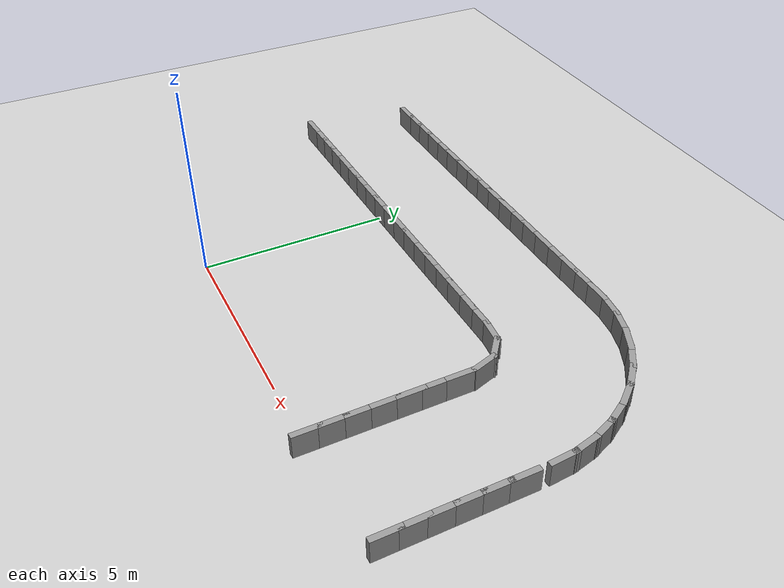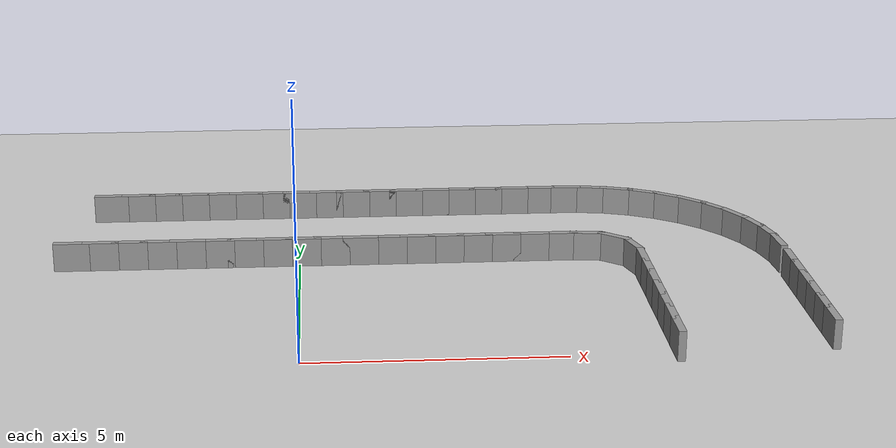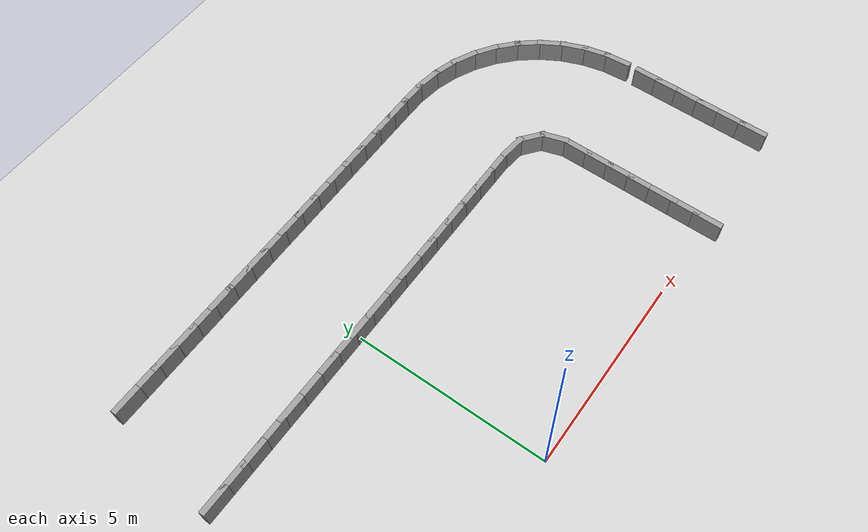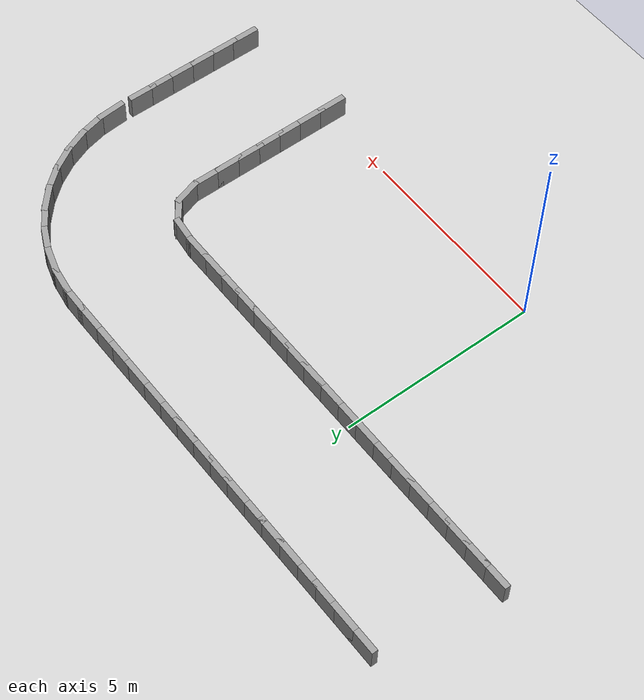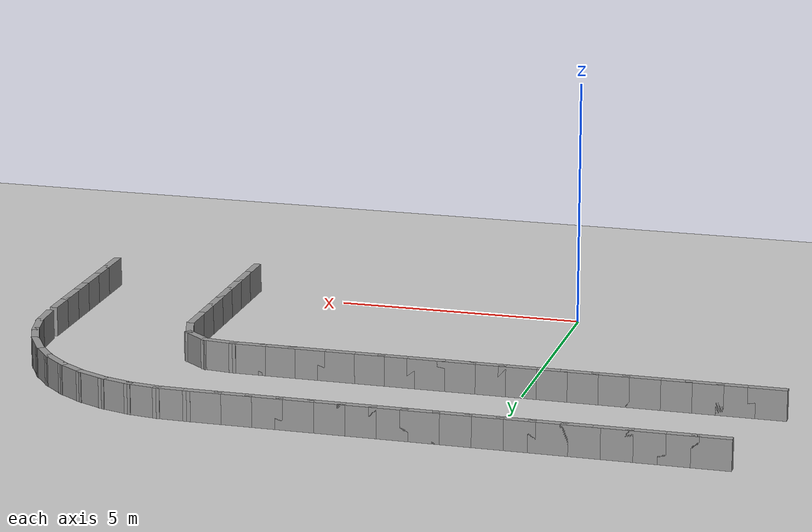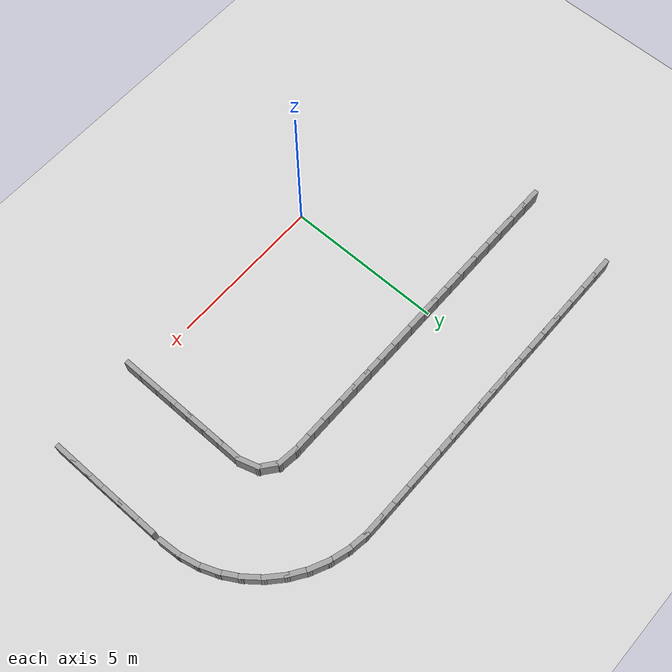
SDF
<sdf version="1.7">
 <world name="default">
  <model name="ground_plane">
   <static>1</static>
   <link name="link">
    <collision name="collision">
     <geometry><plane><normal>0 0 1</normal><size>100 100</size></plane></geometry>
     <surface><friction><ode><mu>100</mu><mu2>50</mu2></ode></friction></surface>
    </collision>
    <visual name="visual">
     <cast_shadows>0</cast_shadows>
     <geometry><plane><normal>0 0 1</normal><size>100 100</size></plane></geometry>
     <material>
      <script><uri>file://media/materials/scripts/gazebo.material</uri><name>Gazebo/Grey</name></script>
     </material>
    </visual>
   </link>
  </model>
  <model name="parking_lot_loop">
   <link name="Wall_0">
    <collision name="Wall_0_Collision">
     <geometry><box><size>0.7410 0.1500 0.6000</size></box></geometry>
     <pose>0 0 0.3000 0 -0 0</pose>
    </collision>
    <visual name="Wall_0_Visual">
     <pose>0 0 0.3000 0 -0 0</pose>
     <geometry><box><size>0.7410 0.1500 0.6000</size></box></geometry>
     <material>
      <script><uri>file://media/materials/scripts/gazebo.material</uri><name>Gazebo/Grey</name></script>
      <ambient>1 1 1 1</ambient>
     </material>
    </visual>
    <pose>6.9127 4.2823 0 0 -0 1.87080</pose>
   </link>
   <link name="Wall_1">
    <collision name="Wall_1_Collision">
     <geometry><box><size>0.7410 0.1500 0.6000</size></box></geometry>
     <pose>0 0 0.3000 0 -0 0</pose>
    </collision>
    <visual name="Wall_1_Visual">
     <pose>0 0 0.3000 0 -0 0</pose>
     <geometry><box><size>0.7410 0.1500 0.6000</size></box></geometry>
     <material>
      <script><uri>file://media/materials/scripts/gazebo.material</uri><name>Gazebo/Grey</name></script>
      <ambient>1 1 1 1</ambient>
     </material>
    </visual>
    <pose>6.5938 4.7483 0 0 -0 2.47079</pose>
   </link>
   <link name="Wall_2">
    <collision name="Wall_2_Collision">
     <geometry><box><size>0.7455 0.1500 0.6000</size></box></geometry>
     <pose>0 0 0.3000 0 -0 0</pose>
    </collision>
    <visual name="Wall_2_Visual">
     <pose>0 0 0.3000 0 -0 0</pose>
     <geometry><box><size>0.7455 0.1500 0.6000</size></box></geometry>
     <material>
      <script><uri>file://media/materials/scripts/gazebo.material</uri><name>Gazebo/Grey</name></script>
      <ambient>1 1 1 1</ambient>
     </material>
    </visual>
    <pose>6.0666 4.9660 0 0 -0 3.02720</pose>
   </link>
   <link name="Wall_3">
    <collision name="Wall_3_Collision">
     <geometry><box><size>0.7500 0.1500 0.6000</size></box></geometry>
     <pose>0 0 0.3000 0 -0 0</pose>
    </collision>
    <visual name="Wall_3_Visual">
     <pose>0 0 0.3000 0 -0 0</pose>
     <geometry><box><size>0.7500 0.1500 0.6000</size></box></geometry>
     <material>
      <script><uri>file://media/materials/scripts/gazebo.material</uri><name>Gazebo/Grey</name></script>
      <ambient>1 1 1 1</ambient>
     </material>
    </visual>
    <pose>5.4708 5.0000 0 0 -0 3.14159</pose>
   </link>
   <link name="Wall_4">
    <collision name="Wall_4_Collision">
     <geometry><box><size>0.7500 0.1500 0.6000</size></box></geometry>
     <pose>0 0 0.3000 0 -0 0</pose>
    </collision>
    <visual name="Wall_4_Visual">
     <pose>0 0 0.3000 0 -0 0</pose>
     <geometry><box><size>0.7500 0.1500 0.6000</size></box></geometry>
     <material>
      <script><uri>file://media/materials/scripts/gazebo.material</uri><name>Gazebo/Grey</name></script>
      <ambient>1 1 1 1</ambient>
     </material>
    </visual>
    <pose>4.8708 5.0000 0 0 -0 3.14159</pose>
   </link>
   <link name="Wall_5">
    <collision name="Wall_5_Collision">
     <geometry><box><size>0.7500 0.1500 0.6000</size></box></geometry>
     <pose>0 0 0.3000 0 -0 0</pose>
    </collision>
    <visual name="Wall_5_Visual">
     <pose>0 0 0.3000 0 -0 0</pose>
     <geometry><box><size>0.7500 0.1500 0.6000</size></box></geometry>
     <material>
      <script><uri>file://media/materials/scripts/gazebo.material</uri><name>Gazebo/Grey</name></script>
      <ambient>1 1 1 1</ambient>
     </material>
    </visual>
    <pose>4.2708 5.0000 0 0 -0 3.14159</pose>
   </link>
   <link name="Wall_6">
    <collision name="Wall_6_Collision">
     <geometry><box><size>0.7500 0.1500 0.6000</size></box></geometry>
     <pose>0 0 0.3000 0 -0 0</pose>
    </collision>
    <visual name="Wall_6_Visual">
     <pose>0 0 0.3000 0 -0 0</pose>
     <geometry><box><size>0.7500 0.1500 0.6000</size></box></geometry>
     <material>
      <script><uri>file://media/materials/scripts/gazebo.material</uri><name>Gazebo/Grey</name></script>
      <ambient>1 1 1 1</ambient>
     </material>
    </visual>
    <pose>3.6708 5.0000 0 0 -0 3.14159</pose>
   </link>
   <link name="Wall_7">
    <collision name="Wall_7_Collision">
     <geometry><box><size>0.7500 0.1500 0.6000</size></box></geometry>
     <pose>0 0 0.3000 0 -0 0</pose>
    </collision>
    <visual name="Wall_7_Visual">
     <pose>0 0 0.3000 0 -0 0</pose>
     <geometry><box><size>0.7500 0.1500 0.6000</size></box></geometry>
     <material>
      <script><uri>file://media/materials/scripts/gazebo.material</uri><name>Gazebo/Grey</name></script>
      <ambient>1 1 1 1</ambient>
     </material>
    </visual>
    <pose>3.0708 5.0000 0 0 -0 3.14159</pose>
   </link>
   <link name="Wall_8">
    <collision name="Wall_8_Collision">
     <geometry><box><size>0.7500 0.1500 0.6000</size></box></geometry>
     <pose>0 0 0.3000 0 -0 0</pose>
    </collision>
    <visual name="Wall_8_Visual">
     <pose>0 0 0.3000 0 -0 0</pose>
     <geometry><box><size>0.7500 0.1500 0.6000</size></box></geometry>
     <material>
      <script><uri>file://media/materials/scripts/gazebo.material</uri><name>Gazebo/Grey</name></script>
      <ambient>1 1 1 1</ambient>
     </material>
    </visual>
    <pose>2.4708 5.0000 0 0 -0 3.14159</pose>
   </link>
   <link name="Wall_9">
    <collision name="Wall_9_Collision">
     <geometry><box><size>0.7500 0.1500 0.6000</size></box></geometry>
     <pose>0 0 0.3000 0 -0 0</pose>
    </collision>
    <visual name="Wall_9_Visual">
     <pose>0 0 0.3000 0 -0 0</pose>
     <geometry><box><size>0.7500 0.1500 0.6000</size></box></geometry>
     <material>
      <script><uri>file://media/materials/scripts/gazebo.material</uri><name>Gazebo/Grey</name></script>
      <ambient>1 1 1 1</ambient>
     </material>
    </visual>
    <pose>1.8708 5.0000 0 0 -0 3.14159</pose>
   </link>
   <link name="Wall_10">
    <collision name="Wall_10_Collision">
     <geometry><box><size>0.7500 0.1500 0.6000</size></box></geometry>
     <pose>0 0 0.3000 0 -0 0</pose>
    </collision>
    <visual name="Wall_10_Visual">
     <pose>0 0 0.3000 0 -0 0</pose>
     <geometry><box><size>0.7500 0.1500 0.6000</size></box></geometry>
     <material>
      <script><uri>file://media/materials/scripts/gazebo.material</uri><name>Gazebo/Grey</name></script>
      <ambient>1 1 1 1</ambient>
     </material>
    </visual>
    <pose>1.2708 5.0000 0 0 -0 3.14159</pose>
   </link>
   <link name="Wall_11">
    <collision name="Wall_11_Collision">
     <geometry><box><size>0.7500 0.1500 0.6000</size></box></geometry>
     <pose>0 0 0.3000 0 -0 0</pose>
    </collision>
    <visual name="Wall_11_Visual">
     <pose>0 0 0.3000 0 -0 0</pose>
     <geometry><box><size>0.7500 0.1500 0.6000</size></box></geometry>
     <material>
      <script><uri>file://media/materials/scripts/gazebo.material</uri><name>Gazebo/Grey</name></script>
      <ambient>1 1 1 1</ambient>
     </material>
    </visual>
    <pose>0.6708 5.0000 0 0 -0 3.14159</pose>
   </link>
   <link name="Wall_12">
    <collision name="Wall_12_Collision">
     <geometry><box><size>0.7500 0.1500 0.6000</size></box></geometry>
     <pose>0 0 0.3000 0 -0 0</pose>
    </collision>
    <visual name="Wall_12_Visual">
     <pose>0 0 0.3000 0 -0 0</pose>
     <geometry><box><size>0.7500 0.1500 0.6000</size></box></geometry>
     <material>
      <script><uri>file://media/materials/scripts/gazebo.material</uri><name>Gazebo/Grey</name></script>
      <ambient>1 1 1 1</ambient>
     </material>
    </visual>
    <pose>0.0708 5.0000 0 0 -0 3.14159</pose>
   </link>
   <link name="Wall_13">
    <collision name="Wall_13_Collision">
     <geometry><box><size>0.7500 0.1500 0.6000</size></box></geometry>
     <pose>0 0 0.3000 0 -0 0</pose>
    </collision>
    <visual name="Wall_13_Visual">
     <pose>0 0 0.3000 0 -0 0</pose>
     <geometry><box><size>0.7500 0.1500 0.6000</size></box></geometry>
     <material>
      <script><uri>file://media/materials/scripts/gazebo.material</uri><name>Gazebo/Grey</name></script>
      <ambient>1 1 1 1</ambient>
     </material>
    </visual>
    <pose>-0.5292 5.0000 0 0 -0 3.14159</pose>
   </link>
   <link name="Wall_14">
    <collision name="Wall_14_Collision">
     <geometry><box><size>0.7500 0.1500 0.6000</size></box></geometry>
     <pose>0 0 0.3000 0 -0 0</pose>
    </collision>
    <visual name="Wall_14_Visual">
     <pose>0 0 0.3000 0 -0 0</pose>
     <geometry><box><size>0.7500 0.1500 0.6000</size></box></geometry>
     <material>
      <script><uri>file://media/materials/scripts/gazebo.material</uri><name>Gazebo/Grey</name></script>
      <ambient>1 1 1 1</ambient>
     </material>
    </visual>
    <pose>-1.1292 5.0000 0 0 -0 3.14159</pose>
   </link>
   <link name="Wall_15">
    <collision name="Wall_15_Collision">
     <geometry><box><size>0.7500 0.1500 0.6000</size></box></geometry>
     <pose>0 0 0.3000 0 -0 0</pose>
    </collision>
    <visual name="Wall_15_Visual">
     <pose>0 0 0.3000 0 -0 0</pose>
     <geometry><box><size>0.7500 0.1500 0.6000</size></box></geometry>
     <material>
      <script><uri>file://media/materials/scripts/gazebo.material</uri><name>Gazebo/Grey</name></script>
      <ambient>1 1 1 1</ambient>
     </material>
    </visual>
    <pose>-1.7292 5.0000 0 0 -0 3.14159</pose>
   </link>
   <link name="Wall_16">
    <collision name="Wall_16_Collision">
     <geometry><box><size>0.7500 0.1500 0.6000</size></box></geometry>
     <pose>0 0 0.3000 0 -0 0</pose>
    </collision>
    <visual name="Wall_16_Visual">
     <pose>0 0 0.3000 0 -0 0</pose>
     <geometry><box><size>0.7500 0.1500 0.6000</size></box></geometry>
     <material>
      <script><uri>file://media/materials/scripts/gazebo.material</uri><name>Gazebo/Grey</name></script>
      <ambient>1 1 1 1</ambient>
     </material>
    </visual>
    <pose>-2.3292 5.0000 0 0 -0 3.14159</pose>
   </link>
   <link name="Wall_17">
    <collision name="Wall_17_Collision">
     <geometry><box><size>0.7500 0.1500 0.6000</size></box></geometry>
     <pose>0 0 0.3000 0 -0 0</pose>
    </collision>
    <visual name="Wall_17_Visual">
     <pose>0 0 0.3000 0 -0 0</pose>
     <geometry><box><size>0.7500 0.1500 0.6000</size></box></geometry>
     <material>
      <script><uri>file://media/materials/scripts/gazebo.material</uri><name>Gazebo/Grey</name></script>
      <ambient>1 1 1 1</ambient>
     </material>
    </visual>
    <pose>-2.9292 5.0000 0 0 -0 3.14159</pose>
   </link>
   <link name="Wall_18">
    <collision name="Wall_18_Collision">
     <geometry><box><size>0.7500 0.1500 0.6000</size></box></geometry>
     <pose>0 0 0.3000 0 -0 0</pose>
    </collision>
    <visual name="Wall_18_Visual">
     <pose>0 0 0.3000 0 -0 0</pose>
     <geometry><box><size>0.7500 0.1500 0.6000</size></box></geometry>
     <material>
      <script><uri>file://media/materials/scripts/gazebo.material</uri><name>Gazebo/Grey</name></script>
      <ambient>1 1 1 1</ambient>
     </material>
    </visual>
    <pose>-3.5292 5.0000 0 0 -0 3.14159</pose>
   </link>
   <link name="Wall_19">
    <collision name="Wall_19_Collision">
     <geometry><box><size>0.7500 0.1500 0.6000</size></box></geometry>
     <pose>0 0 0.3000 0 -0 0</pose>
    </collision>
    <visual name="Wall_19_Visual">
     <pose>0 0 0.3000 0 -0 0</pose>
     <geometry><box><size>0.7500 0.1500 0.6000</size></box></geometry>
     <material>
      <script><uri>file://media/materials/scripts/gazebo.material</uri><name>Gazebo/Grey</name></script>
      <ambient>1 1 1 1</ambient>
     </material>
    </visual>
    <pose>-4.1292 5.0000 0 0 -0 3.14159</pose>
   </link>
   <link name="Wall_20">
    <collision name="Wall_20_Collision">
     <geometry><box><size>0.7500 0.1500 0.6000</size></box></geometry>
     <pose>0 0 0.3000 0 -0 0</pose>
    </collision>
    <visual name="Wall_20_Visual">
     <pose>0 0 0.3000 0 -0 0</pose>
     <geometry><box><size>0.7500 0.1500 0.6000</size></box></geometry>
     <material>
      <script><uri>file://media/materials/scripts/gazebo.material</uri><name>Gazebo/Grey</name></script>
      <ambient>1 1 1 1</ambient>
     </material>
    </visual>
    <pose>-4.7292 5.0000 0 0 -0 3.14159</pose>
   </link>
   <link name="Wall_70">
    <collision name="Wall_70_Collision">
     <geometry><box><size>0.7500 0.1500 0.6000</size></box></geometry>
     <pose>0 0 0.3000 0 -0 0</pose>
    </collision>
    <visual name="Wall_70_Visual">
     <pose>0 0 0.3000 0 -0 0</pose>
     <geometry><box><size>0.7500 0.1500 0.6000</size></box></geometry>
     <material>
      <script><uri>file://media/materials/scripts/gazebo.material</uri><name>Gazebo/Grey</name></script>
      <ambient>1 1 1 1</ambient>
     </material>
    </visual>
    <pose>7.0000 0.0168 0 0 -0 1.57080</pose>
   </link>
   <link name="Wall_71">
    <collision name="Wall_71_Collision">
     <geometry><box><size>0.7500 0.1500 0.6000</size></box></geometry>
     <pose>0 0 0.3000 0 -0 0</pose>
    </collision>
    <visual name="Wall_71_Visual">
     <pose>0 0 0.3000 0 -0 0</pose>
     <geometry><box><size>0.7500 0.1500 0.6000</size></box></geometry>
     <material>
      <script><uri>file://media/materials/scripts/gazebo.material</uri><name>Gazebo/Grey</name></script>
      <ambient>1 1 1 1</ambient>
     </material>
    </visual>
    <pose>7.0000 0.6168 0 0 -0 1.57080</pose>
   </link>
   <link name="Wall_72">
    <collision name="Wall_72_Collision">
     <geometry><box><size>0.7500 0.1500 0.6000</size></box></geometry>
     <pose>0 0 0.3000 0 -0 0</pose>
    </collision>
    <visual name="Wall_72_Visual">
     <pose>0 0 0.3000 0 -0 0</pose>
     <geometry><box><size>0.7500 0.1500 0.6000</size></box></geometry>
     <material>
      <script><uri>file://media/materials/scripts/gazebo.material</uri><name>Gazebo/Grey</name></script>
      <ambient>1 1 1 1</ambient>
     </material>
    </visual>
    <pose>7.0000 1.2168 0 0 -0 1.57080</pose>
   </link>
   <link name="Wall_73">
    <collision name="Wall_73_Collision">
     <geometry><box><size>0.7500 0.1500 0.6000</size></box></geometry>
     <pose>0 0 0.3000 0 -0 0</pose>
    </collision>
    <visual name="Wall_73_Visual">
     <pose>0 0 0.3000 0 -0 0</pose>
     <geometry><box><size>0.7500 0.1500 0.6000</size></box></geometry>
     <material>
      <script><uri>file://media/materials/scripts/gazebo.material</uri><name>Gazebo/Grey</name></script>
      <ambient>1 1 1 1</ambient>
     </material>
    </visual>
    <pose>7.0000 1.8168 0 0 -0 1.57080</pose>
   </link>
   <link name="Wall_74">
    <collision name="Wall_74_Collision">
     <geometry><box><size>0.7500 0.1500 0.6000</size></box></geometry>
     <pose>0 0 0.3000 0 -0 0</pose>
    </collision>
    <visual name="Wall_74_Visual">
     <pose>0 0 0.3000 0 -0 0</pose>
     <geometry><box><size>0.7500 0.1500 0.6000</size></box></geometry>
     <material>
      <script><uri>file://media/materials/scripts/gazebo.material</uri><name>Gazebo/Grey</name></script>
      <ambient>1 1 1 1</ambient>
     </material>
    </visual>
    <pose>7.0000 2.4168 0 0 -0 1.57080</pose>
   </link>
   <link name="Wall_75">
    <collision name="Wall_75_Collision">
     <geometry><box><size>0.7500 0.1500 0.6000</size></box></geometry>
     <pose>0 0 0.3000 0 -0 0</pose>
    </collision>
    <visual name="Wall_75_Visual">
     <pose>0 0 0.3000 0 -0 0</pose>
     <geometry><box><size>0.7500 0.1500 0.6000</size></box></geometry>
     <material>
      <script><uri>file://media/materials/scripts/gazebo.material</uri><name>Gazebo/Grey</name></script>
      <ambient>1 1 1 1</ambient>
     </material>
    </visual>
    <pose>7.0000 3.0168 0 0 -0 1.57080</pose>
   </link>
   <link name="Wall_76">
    <collision name="Wall_76_Collision">
     <geometry><box><size>0.7500 0.1500 0.6000</size></box></geometry>
     <pose>0 0 0.3000 0 -0 0</pose>
    </collision>
    <visual name="Wall_76_Visual">
     <pose>0 0 0.3000 0 -0 0</pose>
     <geometry><box><size>0.7500 0.1500 0.6000</size></box></geometry>
     <material>
      <script><uri>file://media/materials/scripts/gazebo.material</uri><name>Gazebo/Grey</name></script>
      <ambient>1 1 1 1</ambient>
     </material>
    </visual>
    <pose>7.0000 3.6168 0 0 -0 1.57080</pose>
   </link>
   <link name="Wall_77">
    <collision name="Wall_77_Collision">
     <geometry><box><size>0.7494 0.1500 0.6000</size></box></geometry>
     <pose>0 0 0.3000 0 -0 0</pose>
    </collision>
    <visual name="Wall_77_Visual">
     <pose>0 0 0.3000 0 -0 0</pose>
     <geometry><box><size>0.7494 0.1500 0.6000</size></box></geometry>
     <material>
      <script><uri>file://media/materials/scripts/gazebo.material</uri><name>Gazebo/Grey</name></script>
      <ambient>1 1 1 1</ambient>
     </material>
    </visual>
    <pose>9.9775 4.2989 0 0 -0 1.64581</pose>
   </link>
   <link name="Wall_78">
    <collision name="Wall_78_Collision">
     <geometry><box><size>0.7494 0.1500 0.6000</size></box></geometry>
     <pose>0 0 0.3000 0 -0 0</pose>
    </collision>
    <visual name="Wall_78_Visual">
     <pose>0 0 0.3000 0 -0 0</pose>
     <geometry><box><size>0.7494 0.1500 0.6000</size></box></geometry>
     <material>
      <script><uri>file://media/materials/scripts/gazebo.material</uri><name>Gazebo/Grey</name></script>
      <ambient>1 1 1 1</ambient>
     </material>
    </visual>
    <pose>9.8882 4.8899 0 0 -0 1.79580</pose>
   </link>
   <link name="Wall_79">
    <collision name="Wall_79_Collision">
     <geometry><box><size>0.7494 0.1500 0.6000</size></box></geometry>
     <pose>0 0 0.3000 0 -0 0</pose>
    </collision>
    <visual name="Wall_79_Visual">
     <pose>0 0 0.3000 0 -0 0</pose>
     <geometry><box><size>0.7494 0.1500 0.6000</size></box></geometry>
     <material>
      <script><uri>file://media/materials/scripts/gazebo.material</uri><name>Gazebo/Grey</name></script>
      <ambient>1 1 1 1</ambient>
     </material>
    </visual>
    <pose>9.7116 5.4610 0 0 -0 1.94578</pose>
   </link>
   <link name="Wall_80">
    <collision name="Wall_80_Collision">
     <geometry><box><size>0.7494 0.1500 0.6000</size></box></geometry>
     <pose>0 0 0.3000 0 -0 0</pose>
    </collision>
    <visual name="Wall_80_Visual">
     <pose>0 0 0.3000 0 -0 0</pose>
     <geometry><box><size>0.7494 0.1500 0.6000</size></box></geometry>
     <material>
      <script><uri>file://media/materials/scripts/gazebo.material</uri><name>Gazebo/Grey</name></script>
      <ambient>1 1 1 1</ambient>
     </material>
    </visual>
    <pose>9.4516 5.9992 0 0 -0 2.09581</pose>
   </link>
   <link name="Wall_81">
    <collision name="Wall_81_Collision">
     <geometry><box><size>0.7494 0.1500 0.6000</size></box></geometry>
     <pose>0 0 0.3000 0 -0 0</pose>
    </collision>
    <visual name="Wall_81_Visual">
     <pose>0 0 0.3000 0 -0 0</pose>
     <geometry><box><size>0.7494 0.1500 0.6000</size></box></geometry>
     <material>
      <script><uri>file://media/materials/scripts/gazebo.material</uri><name>Gazebo/Grey</name></script>
      <ambient>1 1 1 1</ambient>
     </material>
    </visual>
    <pose>9.1140 6.4926 0 0 -0 2.24580</pose>
   </link>
   <link name="Wall_82">
    <collision name="Wall_82_Collision">
     <geometry><box><size>0.7494 0.1500 0.6000</size></box></geometry>
     <pose>0 0 0.3000 0 -0 0</pose>
    </collision>
    <visual name="Wall_82_Visual">
     <pose>0 0 0.3000 0 -0 0</pose>
     <geometry><box><size>0.7494 0.1500 0.6000</size></box></geometry>
     <material>
      <script><uri>file://media/materials/scripts/gazebo.material</uri><name>Gazebo/Grey</name></script>
      <ambient>1 1 1 1</ambient>
     </material>
    </visual>
    <pose>8.7066 6.9299 0 0 -0 2.39579</pose>
   </link>
   <link name="Wall_83">
    <collision name="Wall_83_Collision">
     <geometry><box><size>0.7494 0.1500 0.6000</size></box></geometry>
     <pose>0 0 0.3000 0 -0 0</pose>
    </collision>
    <visual name="Wall_83_Visual">
     <pose>0 0 0.3000 0 -0 0</pose>
     <geometry><box><size>0.7494 0.1500 0.6000</size></box></geometry>
     <material>
      <script><uri>file://media/materials/scripts/gazebo.material</uri><name>Gazebo/Grey</name></script>
      <ambient>1 1 1 1</ambient>
     </material>
    </visual>
    <pose>8.2384 7.3015 0 0 -0 2.54581</pose>
   </link>
   <link name="Wall_84">
    <collision name="Wall_84_Collision">
     <geometry><box><size>0.7494 0.1500 0.6000</size></box></geometry>
     <pose>0 0 0.3000 0 -0 0</pose>
    </collision>
    <visual name="Wall_84_Visual">
     <pose>0 0 0.3000 0 -0 0</pose>
     <geometry><box><size>0.7494 0.1500 0.6000</size></box></geometry>
     <material>
      <script><uri>file://media/materials/scripts/gazebo.material</uri><name>Gazebo/Grey</name></script>
      <ambient>1 1 1 1</ambient>
     </material>
    </visual>
    <pose>7.7198 7.5989 0 0 -0 2.69580</pose>
   </link>
   <link name="Wall_85">
    <collision name="Wall_85_Collision">
     <geometry><box><size>0.7494 0.1500 0.6000</size></box></geometry>
     <pose>0 0 0.3000 0 -0 0</pose>
    </collision>
    <visual name="Wall_85_Visual">
     <pose>0 0 0.3000 0 -0 0</pose>
     <geometry><box><size>0.7494 0.1500 0.6000</size></box></geometry>
     <material>
      <script><uri>file://media/materials/scripts/gazebo.material</uri><name>Gazebo/Grey</name></script>
      <ambient>1 1 1 1</ambient>
     </material>
    </visual>
    <pose>7.1627 7.8155 0 0 -0 2.84579</pose>
   </link>
   <link name="Wall_86">
    <collision name="Wall_86_Collision">
     <geometry><box><size>0.7494 0.1500 0.6000</size></box></geometry>
     <pose>0 0 0.3000 0 -0 0</pose>
    </collision>
    <visual name="Wall_86_Visual">
     <pose>0 0 0.3000 0 -0 0</pose>
     <geometry><box><size>0.7494 0.1500 0.6000</size></box></geometry>
     <material>
      <script><uri>file://media/materials/scripts/gazebo.material</uri><name>Gazebo/Grey</name></script>
      <ambient>1 1 1 1</ambient>
     </material>
    </visual>
    <pose>6.5795 7.9464 0 0 -0 2.99581</pose>
   </link>
   <link name="Wall_87">
    <collision name="Wall_87_Collision">
     <geometry><box><size>0.7498 0.1500 0.6000</size></box></geometry>
     <pose>0 0 0.3000 0 -0 0</pose>
    </collision>
    <visual name="Wall_87_Visual">
     <pose>0 0 0.3000 0 -0 0</pose>
     <geometry><box><size>0.7498 0.1500 0.6000</size></box></geometry>
     <material>
      <script><uri>file://media/materials/scripts/gazebo.material</uri><name>Gazebo/Grey</name></script>
      <ambient>1 1 1 1</ambient>
     </material>
    </visual>
    <pose>5.9831 7.9950 0 0 -0 3.12488</pose>
   </link>
   <link name="Wall_88">
    <collision name="Wall_88_Collision">
     <geometry><box><size>0.7500 0.1500 0.6000</size></box></geometry>
     <pose>0 0 0.3000 0 -0 0</pose>
    </collision>
    <visual name="Wall_88_Visual">
     <pose>0 0 0.3000 0 -0 0</pose>
     <geometry><box><size>0.7500 0.1500 0.6000</size></box></geometry>
     <material>
      <script><uri>file://media/materials/scripts/gazebo.material</uri><name>Gazebo/Grey</name></script>
      <ambient>1 1 1 1</ambient>
     </material>
    </visual>
    <pose>5.3832 8.0000 0 0 -0 3.14159</pose>
   </link>
   <link name="Wall_89">
    <collision name="Wall_89_Collision">
     <geometry><box><size>0.7500 0.1500 0.6000</size></box></geometry>
     <pose>0 0 0.3000 0 -0 0</pose>
    </collision>
    <visual name="Wall_89_Visual">
     <pose>0 0 0.3000 0 -0 0</pose>
     <geometry><box><size>0.7500 0.1500 0.6000</size></box></geometry>
     <material>
      <script><uri>file://media/materials/scripts/gazebo.material</uri><name>Gazebo/Grey</name></script>
      <ambient>1 1 1 1</ambient>
     </material>
    </visual>
    <pose>4.7832 8.0000 0 0 -0 3.14159</pose>
   </link>
   <link name="Wall_90">
    <collision name="Wall_90_Collision">
     <geometry><box><size>0.7500 0.1500 0.6000</size></box></geometry>
     <pose>0 0 0.3000 0 -0 0</pose>
    </collision>
    <visual name="Wall_90_Visual">
     <pose>0 0 0.3000 0 -0 0</pose>
     <geometry><box><size>0.7500 0.1500 0.6000</size></box></geometry>
     <material>
      <script><uri>file://media/materials/scripts/gazebo.material</uri><name>Gazebo/Grey</name></script>
      <ambient>1 1 1 1</ambient>
     </material>
    </visual>
    <pose>4.1832 8.0000 0 0 -0 3.14159</pose>
   </link>
   <link name="Wall_91">
    <collision name="Wall_91_Collision">
     <geometry><box><size>0.7500 0.1500 0.6000</size></box></geometry>
     <pose>0 0 0.3000 0 -0 0</pose>
    </collision>
    <visual name="Wall_91_Visual">
     <pose>0 0 0.3000 0 -0 0</pose>
     <geometry><box><size>0.7500 0.1500 0.6000</size></box></geometry>
     <material>
      <script><uri>file://media/materials/scripts/gazebo.material</uri><name>Gazebo/Grey</name></script>
      <ambient>1 1 1 1</ambient>
     </material>
    </visual>
    <pose>3.5832 8.0000 0 0 -0 3.14159</pose>
   </link>
   <link name="Wall_92">
    <collision name="Wall_92_Collision">
     <geometry><box><size>0.7500 0.1500 0.6000</size></box></geometry>
     <pose>0 0 0.3000 0 -0 0</pose>
    </collision>
    <visual name="Wall_92_Visual">
     <pose>0 0 0.3000 0 -0 0</pose>
     <geometry><box><size>0.7500 0.1500 0.6000</size></box></geometry>
     <material>
      <script><uri>file://media/materials/scripts/gazebo.material</uri><name>Gazebo/Grey</name></script>
      <ambient>1 1 1 1</ambient>
     </material>
    </visual>
    <pose>2.9832 8.0000 0 0 -0 3.14159</pose>
   </link>
   <link name="Wall_93">
    <collision name="Wall_93_Collision">
     <geometry><box><size>0.7500 0.1500 0.6000</size></box></geometry>
     <pose>0 0 0.3000 0 -0 0</pose>
    </collision>
    <visual name="Wall_93_Visual">
     <pose>0 0 0.3000 0 -0 0</pose>
     <geometry><box><size>0.7500 0.1500 0.6000</size></box></geometry>
     <material>
      <script><uri>file://media/materials/scripts/gazebo.material</uri><name>Gazebo/Grey</name></script>
      <ambient>1 1 1 1</ambient>
     </material>
    </visual>
    <pose>2.3832 8.0000 0 0 -0 3.14159</pose>
   </link>
   <link name="Wall_94">
    <collision name="Wall_94_Collision">
     <geometry><box><size>0.7500 0.1500 0.6000</size></box></geometry>
     <pose>0 0 0.3000 0 -0 0</pose>
    </collision>
    <visual name="Wall_94_Visual">
     <pose>0 0 0.3000 0 -0 0</pose>
     <geometry><box><size>0.7500 0.1500 0.6000</size></box></geometry>
     <material>
      <script><uri>file://media/materials/scripts/gazebo.material</uri><name>Gazebo/Grey</name></script>
      <ambient>1 1 1 1</ambient>
     </material>
    </visual>
    <pose>1.7832 8.0000 0 0 -0 3.14159</pose>
   </link>
   <link name="Wall_95">
    <collision name="Wall_95_Collision">
     <geometry><box><size>0.7500 0.1500 0.6000</size></box></geometry>
     <pose>0 0 0.3000 0 -0 0</pose>
    </collision>
    <visual name="Wall_95_Visual">
     <pose>0 0 0.3000 0 -0 0</pose>
     <geometry><box><size>0.7500 0.1500 0.6000</size></box></geometry>
     <material>
      <script><uri>file://media/materials/scripts/gazebo.material</uri><name>Gazebo/Grey</name></script>
      <ambient>1 1 1 1</ambient>
     </material>
    </visual>
    <pose>1.1832 8.0000 0 0 -0 3.14159</pose>
   </link>
   <link name="Wall_96">
    <collision name="Wall_96_Collision">
     <geometry><box><size>0.7500 0.1500 0.6000</size></box></geometry>
     <pose>0 0 0.3000 0 -0 0</pose>
    </collision>
    <visual name="Wall_96_Visual">
     <pose>0 0 0.3000 0 -0 0</pose>
     <geometry><box><size>0.7500 0.1500 0.6000</size></box></geometry>
     <material>
      <script><uri>file://media/materials/scripts/gazebo.material</uri><name>Gazebo/Grey</name></script>
      <ambient>1 1 1 1</ambient>
     </material>
    </visual>
    <pose>0.5832 8.0000 0 0 -0 3.14159</pose>
   </link>
   <link name="Wall_97">
    <collision name="Wall_97_Collision">
     <geometry><box><size>0.7500 0.1500 0.6000</size></box></geometry>
     <pose>0 0 0.3000 0 -0 0</pose>
    </collision>
    <visual name="Wall_97_Visual">
     <pose>0 0 0.3000 0 -0 0</pose>
     <geometry><box><size>0.7500 0.1500 0.6000</size></box></geometry>
     <material>
      <script><uri>file://media/materials/scripts/gazebo.material</uri><name>Gazebo/Grey</name></script>
      <ambient>1 1 1 1</ambient>
     </material>
    </visual>
    <pose>-0.0168 8.0000 0 0 -0 3.14159</pose>
   </link>
   <link name="Wall_98">
    <collision name="Wall_98_Collision">
     <geometry><box><size>0.7500 0.1500 0.6000</size></box></geometry>
     <pose>0 0 0.3000 0 -0 0</pose>
    </collision>
    <visual name="Wall_98_Visual">
     <pose>0 0 0.3000 0 -0 0</pose>
     <geometry><box><size>0.7500 0.1500 0.6000</size></box></geometry>
     <material>
      <script><uri>file://media/materials/scripts/gazebo.material</uri><name>Gazebo/Grey</name></script>
      <ambient>1 1 1 1</ambient>
     </material>
    </visual>
    <pose>-0.6168 8.0000 0 0 -0 3.14159</pose>
   </link>
   <link name="Wall_99">
    <collision name="Wall_99_Collision">
     <geometry><box><size>0.7500 0.1500 0.6000</size></box></geometry>
     <pose>0 0 0.3000 0 -0 0</pose>
    </collision>
    <visual name="Wall_99_Visual">
     <pose>0 0 0.3000 0 -0 0</pose>
     <geometry><box><size>0.7500 0.1500 0.6000</size></box></geometry>
     <material>
      <script><uri>file://media/materials/scripts/gazebo.material</uri><name>Gazebo/Grey</name></script>
      <ambient>1 1 1 1</ambient>
     </material>
    </visual>
    <pose>-1.2168 8.0000 0 0 -0 3.14159</pose>
   </link>
   <link name="Wall_100">
    <collision name="Wall_100_Collision">
     <geometry><box><size>0.7500 0.1500 0.6000</size></box></geometry>
     <pose>0 0 0.3000 0 -0 0</pose>
    </collision>
    <visual name="Wall_100_Visual">
     <pose>0 0 0.3000 0 -0 0</pose>
     <geometry><box><size>0.7500 0.1500 0.6000</size></box></geometry>
     <material>
      <script><uri>file://media/materials/scripts/gazebo.material</uri><name>Gazebo/Grey</name></script>
      <ambient>1 1 1 1</ambient>
     </material>
    </visual>
    <pose>-1.8168 8.0000 0 0 -0 3.14159</pose>
   </link>
   <link name="Wall_101">
    <collision name="Wall_101_Collision">
     <geometry><box><size>0.7500 0.1500 0.6000</size></box></geometry>
     <pose>0 0 0.3000 0 -0 0</pose>
    </collision>
    <visual name="Wall_101_Visual">
     <pose>0 0 0.3000 0 -0 0</pose>
     <geometry><box><size>0.7500 0.1500 0.6000</size></box></geometry>
     <material>
      <script><uri>file://media/materials/scripts/gazebo.material</uri><name>Gazebo/Grey</name></script>
      <ambient>1 1 1 1</ambient>
     </material>
    </visual>
    <pose>-2.4168 8.0000 0 0 -0 3.14159</pose>
   </link>
   <link name="Wall_102">
    <collision name="Wall_102_Collision">
     <geometry><box><size>0.7500 0.1500 0.6000</size></box></geometry>
     <pose>0 0 0.3000 0 -0 0</pose>
    </collision>
    <visual name="Wall_102_Visual">
     <pose>0 0 0.3000 0 -0 0</pose>
     <geometry><box><size>0.7500 0.1500 0.6000</size></box></geometry>
     <material>
      <script><uri>file://media/materials/scripts/gazebo.material</uri><name>Gazebo/Grey</name></script>
      <ambient>1 1 1 1</ambient>
     </material>
    </visual>
    <pose>-3.0168 8.0000 0 0 -0 3.14159</pose>
   </link>
   <link name="Wall_103">
    <collision name="Wall_103_Collision">
     <geometry><box><size>0.7500 0.1500 0.6000</size></box></geometry>
     <pose>0 0 0.3000 0 -0 0</pose>
    </collision>
    <visual name="Wall_103_Visual">
     <pose>0 0 0.3000 0 -0 0</pose>
     <geometry><box><size>0.7500 0.1500 0.6000</size></box></geometry>
     <material>
      <script><uri>file://media/materials/scripts/gazebo.material</uri><name>Gazebo/Grey</name></script>
      <ambient>1 1 1 1</ambient>
     </material>
    </visual>
    <pose>-3.6168 8.0000 0 0 -0 3.14159</pose>
   </link>
   <link name="Wall_104">
    <collision name="Wall_104_Collision">
     <geometry><box><size>0.7500 0.1500 0.6000</size></box></geometry>
     <pose>0 0 0.3000 0 -0 0</pose>
    </collision>
    <visual name="Wall_104_Visual">
     <pose>0 0 0.3000 0 -0 0</pose>
     <geometry><box><size>0.7500 0.1500 0.6000</size></box></geometry>
     <material>
      <script><uri>file://media/materials/scripts/gazebo.material</uri><name>Gazebo/Grey</name></script>
      <ambient>1 1 1 1</ambient>
     </material>
    </visual>
    <pose>-4.2168 8.0000 0 0 -0 3.14159</pose>
   </link>
   <link name="Wall_179">
    <collision name="Wall_179_Collision">
     <geometry><box><size>0.7500 0.1500 0.6000</size></box></geometry>
     <pose>0 0 0.3000 0 -0 0</pose>
    </collision>
    <visual name="Wall_179_Visual">
     <pose>0 0 0.3000 0 -0 0</pose>
     <geometry><box><size>0.7500 0.1500 0.6000</size></box></geometry>
     <material>
      <script><uri>file://media/materials/scripts/gazebo.material</uri><name>Gazebo/Grey</name></script>
      <ambient>1 1 1 1</ambient>
     </material>
    </visual>
    <pose>10.0000 0.3673 0 0 -0 1.57080</pose>
   </link>
   <link name="Wall_180">
    <collision name="Wall_180_Collision">
     <geometry><box><size>0.7500 0.1500 0.6000</size></box></geometry>
     <pose>0 0 0.3000 0 -0 0</pose>
    </collision>
    <visual name="Wall_180_Visual">
     <pose>0 0 0.3000 0 -0 0</pose>
     <geometry><box><size>0.7500 0.1500 0.6000</size></box></geometry>
     <material>
      <script><uri>file://media/materials/scripts/gazebo.material</uri><name>Gazebo/Grey</name></script>
      <ambient>1 1 1 1</ambient>
     </material>
    </visual>
    <pose>10.0000 0.9673 0 0 -0 1.57080</pose>
   </link>
   <link name="Wall_181">
    <collision name="Wall_181_Collision">
     <geometry><box><size>0.7500 0.1500 0.6000</size></box></geometry>
     <pose>0 0 0.3000 0 -0 0</pose>
    </collision>
    <visual name="Wall_181_Visual">
     <pose>0 0 0.3000 0 -0 0</pose>
     <geometry><box><size>0.7500 0.1500 0.6000</size></box></geometry>
     <material>
      <script><uri>file://media/materials/scripts/gazebo.material</uri><name>Gazebo/Grey</name></script>
      <ambient>1 1 1 1</ambient>
     </material>
    </visual>
    <pose>10.0000 1.5673 0 0 -0 1.57080</pose>
   </link>
   <link name="Wall_182">
    <collision name="Wall_182_Collision">
     <geometry><box><size>0.7500 0.1500 0.6000</size></box></geometry>
     <pose>0 0 0.3000 0 -0 0</pose>
    </collision>
    <visual name="Wall_182_Visual">
     <pose>0 0 0.3000 0 -0 0</pose>
     <geometry><box><size>0.7500 0.1500 0.6000</size></box></geometry>
     <material>
      <script><uri>file://media/materials/scripts/gazebo.material</uri><name>Gazebo/Grey</name></script>
      <ambient>1 1 1 1</ambient>
     </material>
    </visual>
    <pose>10.0000 2.1673 0 0 -0 1.57080</pose>
   </link>
   <link name="Wall_183">
    <collision name="Wall_183_Collision">
     <geometry><box><size>0.7500 0.1500 0.6000</size></box></geometry>
     <pose>0 0 0.3000 0 -0 0</pose>
    </collision>
    <visual name="Wall_183_Visual">
     <pose>0 0 0.3000 0 -0 0</pose>
     <geometry><box><size>0.7500 0.1500 0.6000</size></box></geometry>
     <material>
      <script><uri>file://media/materials/scripts/gazebo.material</uri><name>Gazebo/Grey</name></script>
      <ambient>1 1 1 1</ambient>
     </material>
    </visual>
    <pose>10.0000 2.7673 0 0 -0 1.57080</pose>
   </link>
   <link name="Wall_184">
    <collision name="Wall_184_Collision">
     <geometry><box><size>0.7500 0.1500 0.6000</size></box></geometry>
     <pose>0 0 0.3000 0 -0 0</pose>
    </collision>
    <visual name="Wall_184_Visual">
     <pose>0 0 0.3000 0 -0 0</pose>
     <geometry><box><size>0.7500 0.1500 0.6000</size></box></geometry>
     <material>
      <script><uri>file://media/materials/scripts/gazebo.material</uri><name>Gazebo/Grey</name></script>
      <ambient>1 1 1 1</ambient>
     </material>
    </visual>
    <pose>10.0000 3.3673 0 0 -0 1.57080</pose>
   </link>
   <static>1</static>
  </model>
 </world>
</sdf>
